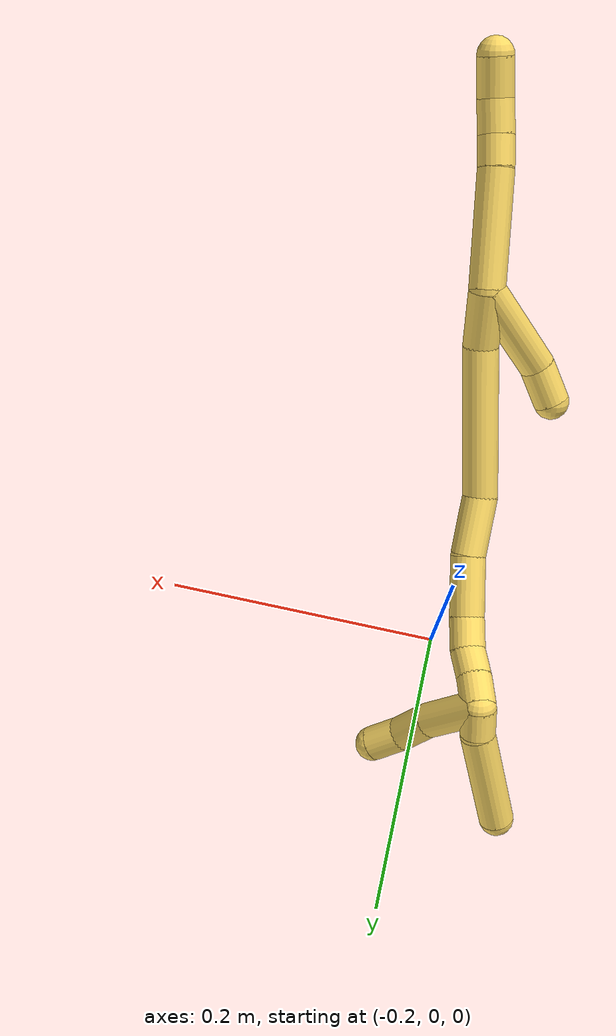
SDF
<sdf version="1.7">
 <world name="default">
  <model name="5">
   <static>0</static>
   <link name="5">
    <collision name="collision-cylinder-e_1_2_8">
     <pose>-0.000382 -0.01273 0.037518 0.327123 -0.009638 -0.001591</pose>
     <geometry><cylinder><radius>0.0125</radius><length>0.079241</length></cylinder></geometry>
     <surface>
      <friction><ode><mu>1.16</mu><mu2>1.16</mu2><slip1>0</slip1><slip2>0</slip2></ode></friction>
      <contact><ode><kp>1e+06</kp><kd>1</kd><max_vel>0</max_vel><min_depth>0.001</min_depth></ode></contact>
     </surface>
    </collision>
    <visual name="visual-cylinder-e_1_2_8">
     <pose>-0.000382 -0.01273 0.037518 0.327123 -0.009638 -0.001591</pose>
     <geometry><cylinder><radius>0.0125</radius><length>0.079241</length></cylinder></geometry>
     <material><ambient>1 0.858824 0.4 1</ambient></material>
    </visual>
    <collision name="collision-cylinder-e_2_8_9">
     <pose>-0.000165 -0.029208 0.084783 0.367015 0.057235 0.010625</pose>
     <geometry><cylinder><radius>0.0125</radius><length>0.02092</length></cylinder></geometry>
     <surface>
      <friction><ode><mu>1.16</mu><mu2>1.16</mu2><slip1>0</slip1><slip2>0</slip2></ode></friction>
      <contact><ode><kp>1e+06</kp><kd>1</kd><max_vel>0</max_vel><min_depth>0.001</min_depth></ode></contact>
     </surface>
    </collision>
    <visual name="visual-cylinder-e_2_8_9">
     <pose>-0.000165 -0.029208 0.084783 0.367015 0.057235 0.010625</pose>
     <geometry><cylinder><radius>0.0125</radius><length>0.02092</length></cylinder></geometry>
     <material><ambient>1 0.858824 0.4 1</ambient></material>
    </visual>
    <collision name="collision-cylinder-e_3_9_10">
     <pose>0.001472 -0.036104 0.105711 0.274565 0.089212 0.012333</pose>
     <geometry><cylinder><radius>0.0125</radius><length>0.023324</length></cylinder></geometry>
     <surface>
      <friction><ode><mu>1.16</mu><mu2>1.16</mu2><slip1>0</slip1><slip2>0</slip2></ode></friction>
      <contact><ode><kp>1e+06</kp><kd>1</kd><max_vel>0</max_vel><min_depth>0.001</min_depth></ode></contact>
     </surface>
    </collision>
    <visual name="visual-cylinder-e_3_9_10">
     <pose>0.001472 -0.036104 0.105711 0.274565 0.089212 0.012333</pose>
     <geometry><cylinder><radius>0.0125</radius><length>0.023324</length></cylinder></geometry>
     <material><ambient>1 0.858824 0.4 1</ambient></material>
    </visual>
    <collision name="collision-cylinder-e_4_10_6">
     <pose>0.003346 -0.040162 0.130091 0.068729 0.06301 0.002167</pose>
     <geometry><cylinder><radius>0.0125</radius><length>0.026515</length></cylinder></geometry>
     <surface>
      <friction><ode><mu>1.16</mu><mu2>1.16</mu2><slip1>0</slip1><slip2>0</slip2></ode></friction>
      <contact><ode><kp>1e+06</kp><kd>1</kd><max_vel>0</max_vel><min_depth>0.001</min_depth></ode></contact>
     </surface>
    </collision>
    <visual name="visual-cylinder-e_4_10_6">
     <pose>0.003346 -0.040162 0.130091 0.068729 0.06301 0.002167</pose>
     <geometry><cylinder><radius>0.0125</radius><length>0.026515</length></cylinder></geometry>
     <material><ambient>1 0.858824 0.4 1</ambient></material>
    </visual>
    <collision name="collision-cylinder-e_1_2_11">
     <pose>-0.018811 -0.009033 -0.028801 2.83767 -0.557304 -2.15864</pose>
     <geometry><cylinder><radius>0.0125</radius><length>0.071131</length></cylinder></geometry>
     <surface>
      <friction><ode><mu>1.16</mu><mu2>1.16</mu2><slip1>0</slip1><slip2>0</slip2></ode></friction>
      <contact><ode><kp>1e+06</kp><kd>1</kd><max_vel>0</max_vel><min_depth>0.001</min_depth></ode></contact>
     </surface>
    </collision>
    <visual name="visual-cylinder-e_1_2_11">
     <pose>-0.018811 -0.009033 -0.028801 2.83767 -0.557304 -2.15864</pose>
     <geometry><cylinder><radius>0.0125</radius><length>0.071131</length></cylinder></geometry>
     <material><ambient>1 0.858824 0.4 1</ambient></material>
    </visual>
    <collision name="collision-cylinder-e_2_11_5">
     <pose>-0.043701 -0.017493 -0.07068 -3.09783 -0.434731 2.94406</pose>
     <geometry><cylinder><radius>0.0125</radius><length>0.028869</length></cylinder></geometry>
     <surface>
      <friction><ode><mu>1.16</mu><mu2>1.16</mu2><slip1>0</slip1><slip2>0</slip2></ode></friction>
      <contact><ode><kp>1e+06</kp><kd>1</kd><max_vel>0</max_vel><min_depth>0.001</min_depth></ode></contact>
     </surface>
    </collision>
    <visual name="visual-cylinder-e_2_11_5">
     <pose>-0.043701 -0.017493 -0.07068 -3.09783 -0.434731 2.94406</pose>
     <geometry><cylinder><radius>0.0125</radius><length>0.028869</length></cylinder></geometry>
     <material><ambient>1 0.858824 0.4 1</ambient></material>
    </visual>
    <collision name="collision-cylinder-e_1_2_12">
     <pose>0.000963 -0.001023 -0.019998 3.09048 0.048076 1.50949</pose>
     <geometry><cylinder><radius>0.0125</radius><length>0.040096</length></cylinder></geometry>
     <surface>
      <friction><ode><mu>1.16</mu><mu2>1.16</mu2><slip1>0</slip1><slip2>0</slip2></ode></friction>
      <contact><ode><kp>1e+06</kp><kd>1</kd><max_vel>0</max_vel><min_depth>0.001</min_depth></ode></contact>
     </surface>
    </collision>
    <visual name="visual-cylinder-e_1_2_12">
     <pose>0.000963 -0.001023 -0.019998 3.09048 0.048076 1.50949</pose>
     <geometry><cylinder><radius>0.0125</radius><length>0.040096</length></cylinder></geometry>
     <material><ambient>1 0.858824 0.4 1</ambient></material>
    </visual>
    <collision name="collision-cylinder-e_2_12_13">
     <pose>-0.001186 0.007681 -0.092249 -2.95753 -0.058498 0.613981</pose>
     <geometry><cylinder><radius>0.0125</radius><length>0.106483</length></cylinder></geometry>
     <surface>
      <friction><ode><mu>1.16</mu><mu2>1.16</mu2><slip1>0</slip1><slip2>0</slip2></ode></friction>
      <contact><ode><kp>1e+06</kp><kd>1</kd><max_vel>0</max_vel><min_depth>0.001</min_depth></ode></contact>
     </surface>
    </collision>
    <visual name="visual-cylinder-e_2_12_13">
     <pose>-0.001186 0.007681 -0.092249 -2.95753 -0.058498 0.613981</pose>
     <geometry><cylinder><radius>0.0125</radius><length>0.106483</length></cylinder></geometry>
     <material><ambient>1 0.858824 0.4 1</ambient></material>
    </visual>
    <collision name="collision-cylinder-e_3_13_14">
     <pose>-0.001454 0.027052 -0.163401 -2.66978 0.133278 -0.541624</pose>
     <geometry><cylinder><radius>0.0125</radius><length>0.042814</length></cylinder></geometry>
     <surface>
      <friction><ode><mu>1.16</mu><mu2>1.16</mu2><slip1>0</slip1><slip2>0</slip2></ode></friction>
      <contact><ode><kp>1e+06</kp><kd>1</kd><max_vel>0</max_vel><min_depth>0.001</min_depth></ode></contact>
     </surface>
    </collision>
    <visual name="visual-cylinder-e_3_13_14">
     <pose>-0.001454 0.027052 -0.163401 -2.66978 0.133278 -0.541624</pose>
     <geometry><cylinder><radius>0.0125</radius><length>0.042814</length></cylinder></geometry>
     <material><ambient>1 0.858824 0.4 1</ambient></material>
    </visual>
    <collision name="collision-cylinder-e_4_14_15">
     <pose>0.00042 0.046257 -0.202105 -2.69182 -0.044118 0.192301</pose>
     <geometry><cylinder><radius>0.0125</radius><length>0.044027</length></cylinder></geometry>
     <surface>
      <friction><ode><mu>1.16</mu><mu2>1.16</mu2><slip1>0</slip1><slip2>0</slip2></ode></friction>
      <contact><ode><kp>1e+06</kp><kd>1</kd><max_vel>0</max_vel><min_depth>0.001</min_depth></ode></contact>
     </surface>
    </collision>
    <visual name="visual-cylinder-e_4_14_15">
     <pose>0.00042 0.046257 -0.202105 -2.69182 -0.044118 0.192301</pose>
     <geometry><cylinder><radius>0.0125</radius><length>0.044027</length></cylinder></geometry>
     <material><ambient>1 0.858824 0.4 1</ambient></material>
    </visual>
    <collision name="collision-cylinder-e_5_15_16">
     <pose>-0.001621 0.063735 -0.230633 -2.4046 -0.090545 0.233582</pose>
     <geometry><cylinder><radius>0.0125</radius><length>0.023656</length></cylinder></geometry>
     <surface>
      <friction><ode><mu>1.16</mu><mu2>1.16</mu2><slip1>0</slip1><slip2>0</slip2></ode></friction>
      <contact><ode><kp>1e+06</kp><kd>1</kd><max_vel>0</max_vel><min_depth>0.001</min_depth></ode></contact>
     </surface>
    </collision>
    <visual name="visual-cylinder-e_5_15_16">
     <pose>-0.001621 0.063735 -0.230633 -2.4046 -0.090545 0.233582</pose>
     <geometry><cylinder><radius>0.0125</radius><length>0.023656</length></cylinder></geometry>
     <material><ambient>1 0.858824 0.4 1</ambient></material>
    </visual>
    <collision name="collision-cylinder-e_6_16_17">
     <pose>-0.005491 0.079485 -0.245013 -2.19622 -0.28209 0.541695</pose>
     <geometry><cylinder><radius>0.0125</radius><length>0.020121</length></cylinder></geometry>
     <surface>
      <friction><ode><mu>1.16</mu><mu2>1.16</mu2><slip1>0</slip1><slip2>0</slip2></ode></friction>
      <contact><ode><kp>1e+06</kp><kd>1</kd><max_vel>0</max_vel><min_depth>0.001</min_depth></ode></contact>
     </surface>
    </collision>
    <visual name="visual-cylinder-e_6_16_17">
     <pose>-0.005491 0.079485 -0.245013 -2.19622 -0.28209 0.541695</pose>
     <geometry><cylinder><radius>0.0125</radius><length>0.020121</length></cylinder></geometry>
     <material><ambient>1 0.858824 0.4 1</ambient></material>
    </visual>
    <collision name="collision-cylinder-e_7_17_1">
     <pose>-0.010467 0.096863 -0.256516 -2.12042 -0.192016 0.340536</pose>
     <geometry><cylinder><radius>0.0125</radius><length>0.022803</length></cylinder></geometry>
     <surface>
      <friction><ode><mu>1.16</mu><mu2>1.16</mu2><slip1>0</slip1><slip2>0</slip2></ode></friction>
      <contact><ode><kp>1e+06</kp><kd>1</kd><max_vel>0</max_vel><min_depth>0.001</min_depth></ode></contact>
     </surface>
    </collision>
    <visual name="visual-cylinder-e_7_17_1">
     <pose>-0.010467 0.096863 -0.256516 -2.12042 -0.192016 0.340536</pose>
     <geometry><cylinder><radius>0.0125</radius><length>0.022803</length></cylinder></geometry>
     <material><ambient>1 0.858824 0.4 1</ambient></material>
    </visual>
    <collision name="collision-cylinder-e_1_1_18">
     <pose>0.004595 0.098255 -0.275305 2.57953 0.845012 2</pose>
     <geometry><cylinder><radius>0.0125</radius><length>0.046091</length></cylinder></geometry>
     <surface>
      <friction><ode><mu>1.16</mu><mu2>1.16</mu2><slip1>0</slip1><slip2>0</slip2></ode></friction>
      <contact><ode><kp>1e+06</kp><kd>1</kd><max_vel>0</max_vel><min_depth>0.001</min_depth></ode></contact>
     </surface>
    </collision>
    <visual name="visual-cylinder-e_1_1_18">
     <pose>0.004595 0.098255 -0.275305 2.57953 0.845012 2</pose>
     <geometry><cylinder><radius>0.0125</radius><length>0.046091</length></cylinder></geometry>
     <material><ambient>1 0.858824 0.4 1</ambient></material>
    </visual>
    <collision name="collision-cylinder-e_2_18_19">
     <pose>0.031541 0.086043 -0.297982 2.74635 0.74405 2.19335</pose>
     <geometry><cylinder><radius>0.0125</radius><length>0.02867</length></cylinder></geometry>
     <surface>
      <friction><ode><mu>1.16</mu><mu2>1.16</mu2><slip1>0</slip1><slip2>0</slip2></ode></friction>
      <contact><ode><kp>1e+06</kp><kd>1</kd><max_vel>0</max_vel><min_depth>0.001</min_depth></ode></contact>
     </surface>
    </collision>
    <visual name="visual-cylinder-e_2_18_19">
     <pose>0.031541 0.086043 -0.297982 2.74635 0.74405 2.19335</pose>
     <geometry><cylinder><radius>0.0125</radius><length>0.02867</length></cylinder></geometry>
     <material><ambient>1 0.858824 0.4 1</ambient></material>
    </visual>
    <collision name="collision-cylinder-e_3_19_4">
     <pose>0.051779 0.080333 -0.314473 2.90224 0.986925 2.70166</pose>
     <geometry><cylinder><radius>0.0125</radius><length>0.025239</length></cylinder></geometry>
     <surface>
      <friction><ode><mu>1.16</mu><mu2>1.16</mu2><slip1>0</slip1><slip2>0</slip2></ode></friction>
      <contact><ode><kp>1e+06</kp><kd>1</kd><max_vel>0</max_vel><min_depth>0.001</min_depth></ode></contact>
     </surface>
    </collision>
    <visual name="visual-cylinder-e_3_19_4">
     <pose>0.051779 0.080333 -0.314473 2.90224 0.986925 2.70166</pose>
     <geometry><cylinder><radius>0.0125</radius><length>0.025239</length></cylinder></geometry>
     <material><ambient>1 0.858824 0.4 1</ambient></material>
    </visual>
    <collision name="collision-cylinder-e_1_1_20">
     <pose>-0.012881 0.107369 -0.2728 -3.04969 -0.022682 0.483604</pose>
     <geometry><cylinder><radius>0.0125</radius><length>0.020968</length></cylinder></geometry>
     <surface>
      <friction><ode><mu>1.16</mu><mu2>1.16</mu2><slip1>0</slip1><slip2>0</slip2></ode></friction>
      <contact><ode><kp>1e+06</kp><kd>1</kd><max_vel>0</max_vel><min_depth>0.001</min_depth></ode></contact>
     </surface>
    </collision>
    <visual name="visual-cylinder-e_1_1_20">
     <pose>-0.012881 0.107369 -0.2728 -3.04969 -0.022682 0.483604</pose>
     <geometry><cylinder><radius>0.0125</radius><length>0.020968</length></cylinder></geometry>
     <material><ambient>1 0.858824 0.4 1</ambient></material>
    </visual>
    <collision name="collision-cylinder-e_2_20_3">
     <pose>-0.021924 0.105729 -0.321671 3.07399 -0.224718 -2.55929</pose>
     <geometry><cylinder><radius>0.0125</radius><length>0.079032</length></cylinder></geometry>
     <surface>
      <friction><ode><mu>1.16</mu><mu2>1.16</mu2><slip1>0</slip1><slip2>0</slip2></ode></friction>
      <contact><ode><kp>1e+06</kp><kd>1</kd><max_vel>0</max_vel><min_depth>0.001</min_depth></ode></contact>
     </surface>
    </collision>
    <visual name="visual-cylinder-e_2_20_3">
     <pose>-0.021924 0.105729 -0.321671 3.07399 -0.224718 -2.55929</pose>
     <geometry><cylinder><radius>0.0125</radius><length>0.079032</length></cylinder></geometry>
     <material><ambient>1 0.858824 0.4 1</ambient></material>
    </visual>
    <collision name="collision-sphere-3">
     <pose>-0.030729 0.103126 -0.360105 0 -0 0</pose>
     <geometry><sphere><radius>0.0125</radius></sphere></geometry>
     <surface>
      <friction><ode><mu>1.16</mu><mu2>1.16</mu2><slip1>0</slip1><slip2>0</slip2></ode></friction>
      <contact><ode><kp>1e+06</kp><kd>1</kd><max_vel>0</max_vel><min_depth>0.001</min_depth></ode></contact>
     </surface>
    </collision>
    <visual name="visual-sphere-3">
     <pose>-0.030729 0.103126 -0.360105 0 -0 0</pose>
     <geometry><sphere><radius>0.0125</radius></sphere></geometry>
     <material><ambient>1 0.858824 0.4 1</ambient></material>
    </visual>
    <collision name="collision-sphere-20">
     <pose>-0.013118 0.108331 -0.283237 0 -0 0</pose>
     <geometry><sphere><radius>0.0125</radius></sphere></geometry>
     <surface>
      <friction><ode><mu>1.16</mu><mu2>1.16</mu2><slip1>0</slip1><slip2>0</slip2></ode></friction>
      <contact><ode><kp>1e+06</kp><kd>1</kd><max_vel>0</max_vel><min_depth>0.001</min_depth></ode></contact>
     </surface>
    </collision>
    <visual name="visual-sphere-20">
     <pose>-0.013118 0.108331 -0.283237 0 -0 0</pose>
     <geometry><sphere><radius>0.0125</radius></sphere></geometry>
     <material><ambient>1 0.858824 0.4 1</ambient></material>
    </visual>
    <collision name="collision-sphere-4">
     <pose>0.062307 0.078683 -0.321232 0 -0 0</pose>
     <geometry><sphere><radius>0.0125</radius></sphere></geometry>
     <surface>
      <friction><ode><mu>1.16</mu><mu2>1.16</mu2><slip1>0</slip1><slip2>0</slip2></ode></friction>
      <contact><ode><kp>1e+06</kp><kd>1</kd><max_vel>0</max_vel><min_depth>0.001</min_depth></ode></contact>
     </surface>
    </collision>
    <visual name="visual-sphere-4">
     <pose>0.062307 0.078683 -0.321232 0 -0 0</pose>
     <geometry><sphere><radius>0.0125</radius></sphere></geometry>
     <material><ambient>1 0.858824 0.4 1</ambient></material>
    </visual>
    <collision name="collision-sphere-11">
     <pose>-0.037621 -0.018066 -0.057601 0 -0 0</pose>
     <geometry><sphere><radius>0.0125</radius></sphere></geometry>
     <surface>
      <friction><ode><mu>1.16</mu><mu2>1.16</mu2><slip1>0</slip1><slip2>0</slip2></ode></friction>
      <contact><ode><kp>1e+06</kp><kd>1</kd><max_vel>0</max_vel><min_depth>0.001</min_depth></ode></contact>
     </surface>
    </collision>
    <visual name="visual-sphere-11">
     <pose>-0.037621 -0.018066 -0.057601 0 -0 0</pose>
     <geometry><sphere><radius>0.0125</radius></sphere></geometry>
     <material><ambient>1 0.858824 0.4 1</ambient></material>
    </visual>
    <collision name="collision-sphere-6">
     <pose>0.004181 -0.041071 0.143291 0 -0 0</pose>
     <geometry><sphere><radius>0.0125</radius></sphere></geometry>
     <surface>
      <friction><ode><mu>1.16</mu><mu2>1.16</mu2><slip1>0</slip1><slip2>0</slip2></ode></friction>
      <contact><ode><kp>1e+06</kp><kd>1</kd><max_vel>0</max_vel><min_depth>0.001</min_depth></ode></contact>
     </surface>
    </collision>
    <visual name="visual-sphere-6">
     <pose>0.004181 -0.041071 0.143291 0 -0 0</pose>
     <geometry><sphere><radius>0.0125</radius></sphere></geometry>
     <material><ambient>1 0.858824 0.4 1</ambient></material>
    </visual>
    <collision name="collision-sphere-10">
     <pose>0.002511 -0.039254 0.116891 0 -0 0</pose>
     <geometry><sphere><radius>0.0125</radius></sphere></geometry>
     <surface>
      <friction><ode><mu>1.16</mu><mu2>1.16</mu2><slip1>0</slip1><slip2>0</slip2></ode></friction>
      <contact><ode><kp>1e+06</kp><kd>1</kd><max_vel>0</max_vel><min_depth>0.001</min_depth></ode></contact>
     </surface>
    </collision>
    <visual name="visual-sphere-10">
     <pose>0.002511 -0.039254 0.116891 0 -0 0</pose>
     <geometry><sphere><radius>0.0125</radius></sphere></geometry>
     <material><ambient>1 0.858824 0.4 1</ambient></material>
    </visual>
    <collision name="collision-sphere-9">
     <pose>0.000433 -0.032955 0.09453 0 -0 0</pose>
     <geometry><sphere><radius>0.0125</radius></sphere></geometry>
     <surface>
      <friction><ode><mu>1.16</mu><mu2>1.16</mu2><slip1>0</slip1><slip2>0</slip2></ode></friction>
      <contact><ode><kp>1e+06</kp><kd>1</kd><max_vel>0</max_vel><min_depth>0.001</min_depth></ode></contact>
     </surface>
    </collision>
    <visual name="visual-sphere-9">
     <pose>0.000433 -0.032955 0.09453 0 -0 0</pose>
     <geometry><sphere><radius>0.0125</radius></sphere></geometry>
     <material><ambient>1 0.858824 0.4 1</ambient></material>
    </visual>
    <collision name="collision-sphere-2">
     <geometry><sphere><radius>0.0125</radius></sphere></geometry>
     <surface>
      <friction><ode><mu>1.16</mu><mu2>1.16</mu2><slip1>0</slip1><slip2>0</slip2></ode></friction>
      <contact><ode><kp>1e+06</kp><kd>1</kd><max_vel>0</max_vel><min_depth>0.001</min_depth></ode></contact>
     </surface>
    </collision>
    <visual name="visual-sphere-2">
     <geometry><sphere><radius>0.0125</radius></sphere></geometry>
     <material><ambient>1 0.858824 0.4 1</ambient></material>
    </visual>
    <collision name="collision-sphere-19">
     <pose>0.04125 0.081982 -0.307715 0 -0 0</pose>
     <geometry><sphere><radius>0.0125</radius></sphere></geometry>
     <surface>
      <friction><ode><mu>1.16</mu><mu2>1.16</mu2><slip1>0</slip1><slip2>0</slip2></ode></friction>
      <contact><ode><kp>1e+06</kp><kd>1</kd><max_vel>0</max_vel><min_depth>0.001</min_depth></ode></contact>
     </surface>
    </collision>
    <visual name="visual-sphere-19">
     <pose>0.04125 0.081982 -0.307715 0 -0 0</pose>
     <geometry><sphere><radius>0.0125</radius></sphere></geometry>
     <material><ambient>1 0.858824 0.4 1</ambient></material>
    </visual>
    <collision name="collision-sphere-8">
     <pose>-0.000764 -0.02546 0.075035 0 -0 0</pose>
     <geometry><sphere><radius>0.0125</radius></sphere></geometry>
     <surface>
      <friction><ode><mu>1.16</mu><mu2>1.16</mu2><slip1>0</slip1><slip2>0</slip2></ode></friction>
      <contact><ode><kp>1e+06</kp><kd>1</kd><max_vel>0</max_vel><min_depth>0.001</min_depth></ode></contact>
     </surface>
    </collision>
    <visual name="visual-sphere-8">
     <pose>-0.000764 -0.02546 0.075035 0 -0 0</pose>
     <geometry><sphere><radius>0.0125</radius></sphere></geometry>
     <material><ambient>1 0.858824 0.4 1</ambient></material>
    </visual>
    <collision name="collision-sphere-5">
     <pose>-0.04978 -0.016921 -0.08376 0 -0 0</pose>
     <geometry><sphere><radius>0.0125</radius></sphere></geometry>
     <surface>
      <friction><ode><mu>1.16</mu><mu2>1.16</mu2><slip1>0</slip1><slip2>0</slip2></ode></friction>
      <contact><ode><kp>1e+06</kp><kd>1</kd><max_vel>0</max_vel><min_depth>0.001</min_depth></ode></contact>
     </surface>
    </collision>
    <visual name="visual-sphere-5">
     <pose>-0.04978 -0.016921 -0.08376 0 -0 0</pose>
     <geometry><sphere><radius>0.0125</radius></sphere></geometry>
     <material><ambient>1 0.858824 0.4 1</ambient></material>
    </visual>
    <collision name="collision-sphere-12">
     <pose>0.001927 -0.002046 -0.039997 0 -0 0</pose>
     <geometry><sphere><radius>0.0125</radius></sphere></geometry>
     <surface>
      <friction><ode><mu>1.16</mu><mu2>1.16</mu2><slip1>0</slip1><slip2>0</slip2></ode></friction>
      <contact><ode><kp>1e+06</kp><kd>1</kd><max_vel>0</max_vel><min_depth>0.001</min_depth></ode></contact>
     </surface>
    </collision>
    <visual name="visual-sphere-12">
     <pose>0.001927 -0.002046 -0.039997 0 -0 0</pose>
     <geometry><sphere><radius>0.0125</radius></sphere></geometry>
     <material><ambient>1 0.858824 0.4 1</ambient></material>
    </visual>
    <collision name="collision-sphere-13">
     <pose>-0.004299 0.017409 -0.144502 0 -0 0</pose>
     <geometry><sphere><radius>0.0125</radius></sphere></geometry>
     <surface>
      <friction><ode><mu>1.16</mu><mu2>1.16</mu2><slip1>0</slip1><slip2>0</slip2></ode></friction>
      <contact><ode><kp>1e+06</kp><kd>1</kd><max_vel>0</max_vel><min_depth>0.001</min_depth></ode></contact>
     </surface>
    </collision>
    <visual name="visual-sphere-13">
     <pose>-0.004299 0.017409 -0.144502 0 -0 0</pose>
     <geometry><sphere><radius>0.0125</radius></sphere></geometry>
     <material><ambient>1 0.858824 0.4 1</ambient></material>
    </visual>
    <collision name="collision-sphere-14">
     <pose>0.001391 0.036696 -0.1823 0 -0 0</pose>
     <geometry><sphere><radius>0.0125</radius></sphere></geometry>
     <surface>
      <friction><ode><mu>1.16</mu><mu2>1.16</mu2><slip1>0</slip1><slip2>0</slip2></ode></friction>
      <contact><ode><kp>1e+06</kp><kd>1</kd><max_vel>0</max_vel><min_depth>0.001</min_depth></ode></contact>
     </surface>
    </collision>
    <visual name="visual-sphere-14">
     <pose>0.001391 0.036696 -0.1823 0 -0 0</pose>
     <geometry><sphere><radius>0.0125</radius></sphere></geometry>
     <material><ambient>1 0.858824 0.4 1</ambient></material>
    </visual>
    <collision name="collision-sphere-15">
     <pose>-0.000551 0.055818 -0.22191 0 -0 0</pose>
     <geometry><sphere><radius>0.0125</radius></sphere></geometry>
     <surface>
      <friction><ode><mu>1.16</mu><mu2>1.16</mu2><slip1>0</slip1><slip2>0</slip2></ode></friction>
      <contact><ode><kp>1e+06</kp><kd>1</kd><max_vel>0</max_vel><min_depth>0.001</min_depth></ode></contact>
     </surface>
    </collision>
    <visual name="visual-sphere-15">
     <pose>-0.000551 0.055818 -0.22191 0 -0 0</pose>
     <geometry><sphere><radius>0.0125</radius></sphere></geometry>
     <material><ambient>1 0.858824 0.4 1</ambient></material>
    </visual>
    <collision name="collision-sphere-16">
     <pose>-0.00269 0.071652 -0.239356 0 -0 0</pose>
     <geometry><sphere><radius>0.0125</radius></sphere></geometry>
     <surface>
      <friction><ode><mu>1.16</mu><mu2>1.16</mu2><slip1>0</slip1><slip2>0</slip2></ode></friction>
      <contact><ode><kp>1e+06</kp><kd>1</kd><max_vel>0</max_vel><min_depth>0.001</min_depth></ode></contact>
     </surface>
    </collision>
    <visual name="visual-sphere-16">
     <pose>-0.00269 0.071652 -0.239356 0 -0 0</pose>
     <geometry><sphere><radius>0.0125</radius></sphere></geometry>
     <material><ambient>1 0.858824 0.4 1</ambient></material>
    </visual>
    <collision name="collision-sphere-17">
     <pose>-0.008291 0.087319 -0.25067 0 -0 0</pose>
     <geometry><sphere><radius>0.0125</radius></sphere></geometry>
     <surface>
      <friction><ode><mu>1.16</mu><mu2>1.16</mu2><slip1>0</slip1><slip2>0</slip2></ode></friction>
      <contact><ode><kp>1e+06</kp><kd>1</kd><max_vel>0</max_vel><min_depth>0.001</min_depth></ode></contact>
     </surface>
    </collision>
    <visual name="visual-sphere-17">
     <pose>-0.008291 0.087319 -0.25067 0 -0 0</pose>
     <geometry><sphere><radius>0.0125</radius></sphere></geometry>
     <material><ambient>1 0.858824 0.4 1</ambient></material>
    </visual>
    <collision name="collision-sphere-1">
     <pose>-0.012643 0.106407 -0.262362 0 -0 0</pose>
     <geometry><sphere><radius>0.0125</radius></sphere></geometry>
     <surface>
      <friction><ode><mu>1.16</mu><mu2>1.16</mu2><slip1>0</slip1><slip2>0</slip2></ode></friction>
      <contact><ode><kp>1e+06</kp><kd>1</kd><max_vel>0</max_vel><min_depth>0.001</min_depth></ode></contact>
     </surface>
    </collision>
    <visual name="visual-sphere-1">
     <pose>-0.012643 0.106407 -0.262362 0 -0 0</pose>
     <geometry><sphere><radius>0.0125</radius></sphere></geometry>
     <material><ambient>1 0.858824 0.4 1</ambient></material>
    </visual>
    <collision name="collision-sphere-18">
     <pose>0.021832 0.090103 -0.288248 0 -0 0</pose>
     <geometry><sphere><radius>0.0125</radius></sphere></geometry>
     <surface>
      <friction><ode><mu>1.16</mu><mu2>1.16</mu2><slip1>0</slip1><slip2>0</slip2></ode></friction>
      <contact><ode><kp>1e+06</kp><kd>1</kd><max_vel>0</max_vel><min_depth>0.001</min_depth></ode></contact>
     </surface>
    </collision>
    <visual name="visual-sphere-18">
     <pose>0.021832 0.090103 -0.288248 0 -0 0</pose>
     <geometry><sphere><radius>0.0125</radius></sphere></geometry>
     <material><ambient>1 0.858824 0.4 1</ambient></material>
    </visual>
    <inertial>
     <pose>-0.003479 0.032325 -0.128657 0 -0 0</pose>
     <mass>0.75</mass>
     <inertia><ixx>0.000128</ixx><ixy>0</ixy><ixz>0</ixz><iyy>5e-05</iyy><iyz>0</iyz><izz>-4e-06</izz></inertia>
    </inertial>
   </link>
   <pose>-0.184796 -0.208218 0.174607 0.834863 0.086593 0.124469</pose>
  </model>
 </world>
</sdf>
